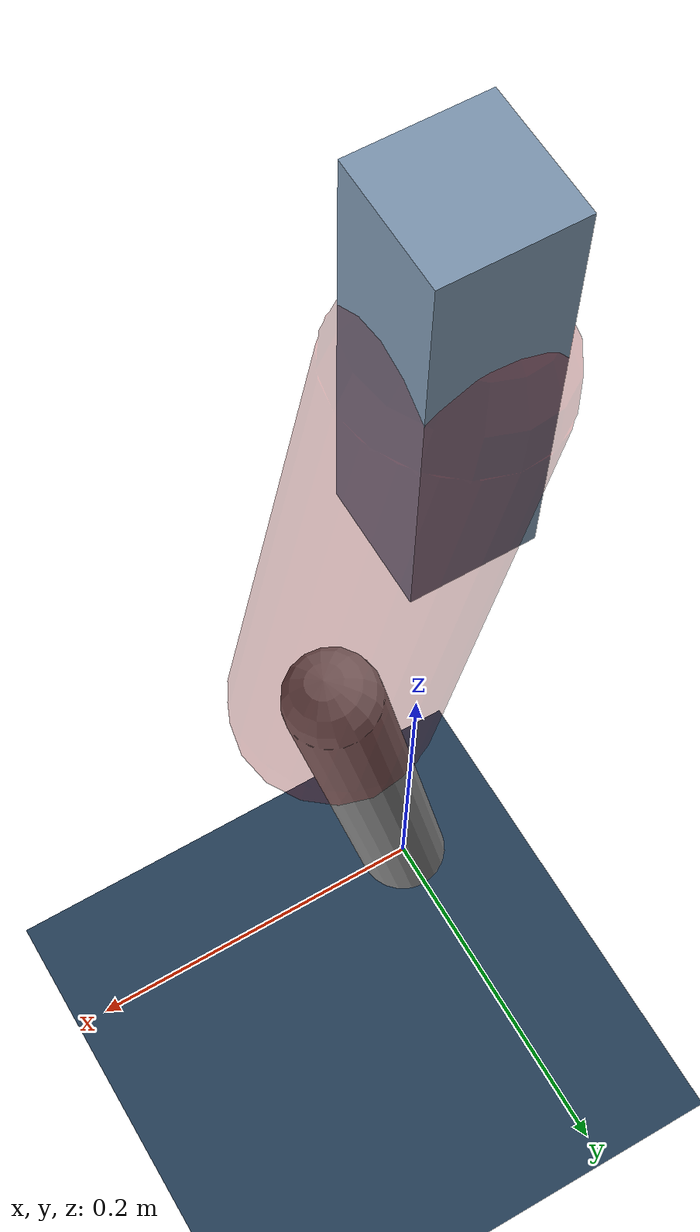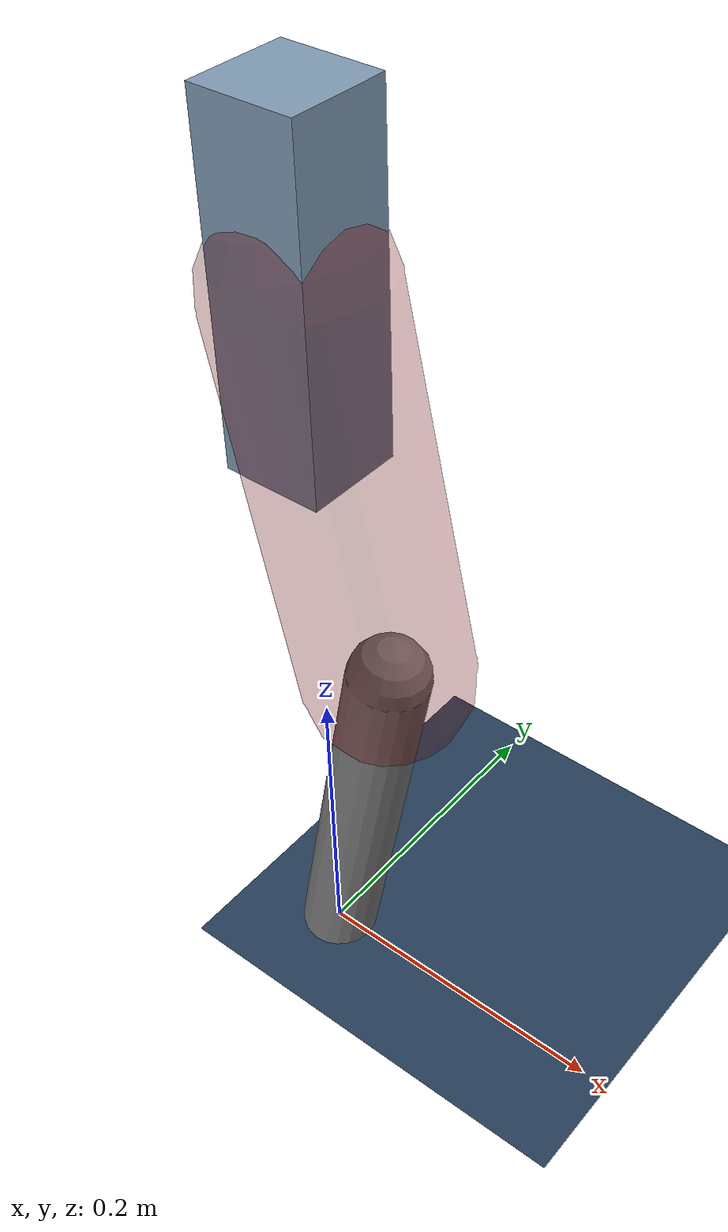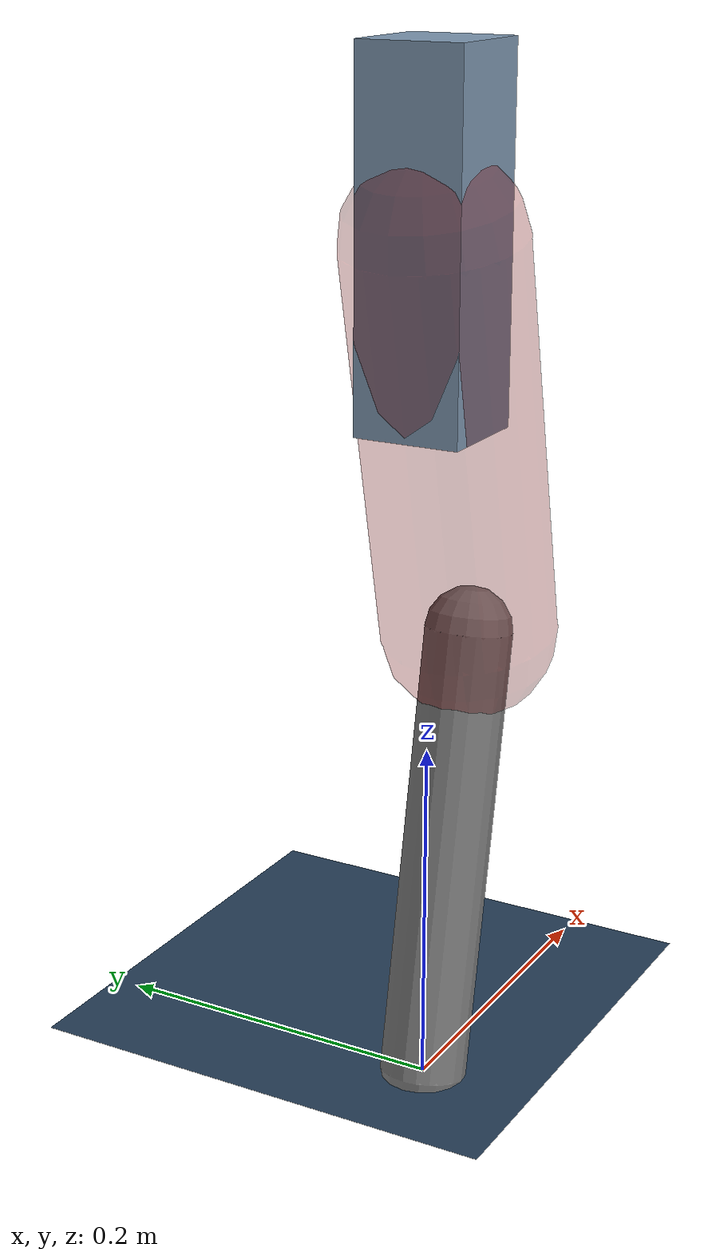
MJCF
<mujoco model="Hopper2D">
	<compiler inertiafromgeom="true" angle="radian" />
	<option timestep="0.001" integrator="implicit" cone="elliptic" solver="Newton" tolerance="1e-10" />

	<default>
		<geom contype="1" conaffinity="1" condim="3" friction="2 0.005 0.0001" solref="0.005 1" />
		<joint limited="true" damping="0.1" />
	</default>

	<asset>
		<texture name="skybox" type="skybox" builtin="gradient" rgb1=".4 .6 .8" rgb2="0 0 0" width="800" height="800" />
		<texture name="grid" type="2d" builtin="checker" rgb1=".1 .2 .3" rgb2=".2 .3 .4" width="300" height="300" mark="edge" markrgb=".2 .3 .4" />
		<material name="ground" texture="grid" texrepeat="1 1" texuniform="true" reflectance="0.1" />
		<material name="leg" rgba="0.5 0.6 0.7 1" />
	</asset>

	<worldbody>

		<geom name="floor" type="plane" size="5 5 0.25" material="ground" />

		<light directional="false" diffuse="0.8 0.8 0.8" specular="0.3 0.3 0.3" pos="0 0 2" dir="0 0 -1" />
		<light mode="targetbodycom" target="base" directional="false" diffuse="0.8 0.8 0.8" specular="0.3 0.3 0.3" pos="0 0 2" dir="0 0 -1" />

		<camera name="fixed" pos="0 -2 1" xyaxes="1 0 0 0 0 1" />
		<camera name="tracking" mode="trackcom" pos="0 -3 1" />

		<body name="root" pos="0 0 0.4799767108949935">
			<joint name="slide_x" type="slide" axis="1 0 0" range="-100 100" />
			<joint name="slide_z" type="slide" axis="0 0 1" range="0 10" />

			<body name="base" pos="0 0 0">
				<geom name="torso" type="box" size="0.03 0.03 0.1" mass="2.258" material="leg" />

				<body name="link1" pos="0 0 0" euler="0 1.354994590763484 0">
					<joint type="hinge" axis="0 -1 0" pos="0 0 0" name="hinge1" limited="true" range="-3.14 3.14" stiffness="0" damping="0.1" />
					<geom name="thigh" type="capsule" fromto="0 0 0 0.22948738460079873 0 0" size="0.05" rgba="0.5 0 0 0.3" mass="0.8037184615019968" />

					<body name="link2" pos="0.22948738460079873 0 0" euler="0 0.40558498465429216 0">
						<joint type="hinge" axis="0 -1 0" pos="0 0 0" name="hinge2" limited="true" range="-3.14 3.14" stiffness="0" damping="0.1" />
						<geom name="shank" type="capsule" fromto="0 0 0 0.26048932629419475 0 0" size="0.025" mass="0.45114039366477526" />

					</body>
				</body>
			</body>
		</body>
	</worldbody>

	<actuator>
		<motor name="torque1" joint="hinge1" ctrlrange="-101.40162521072848 101.40162521072848" ctrllimited="true" gear="1" />
		<motor name="torque2" joint="hinge2" ctrlrange="-88.79026119172784 88.79026119172784" ctrllimited="true" gear="1" />
	</actuator>
</mujoco>
